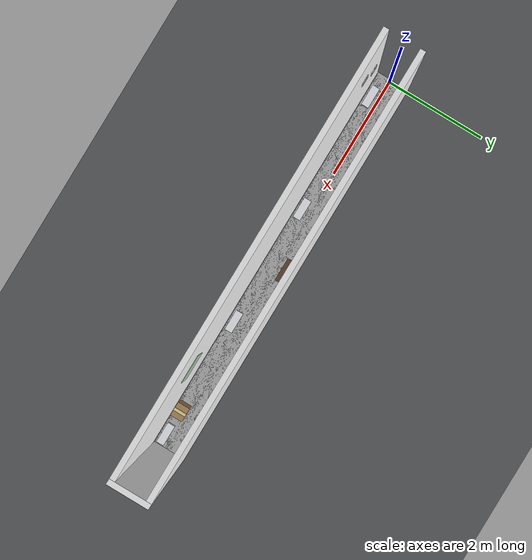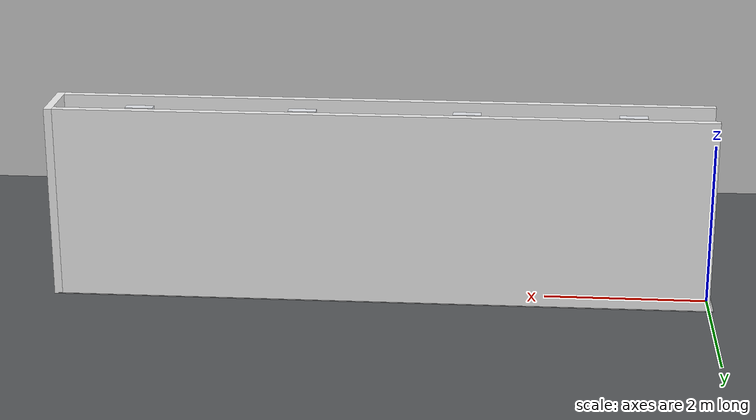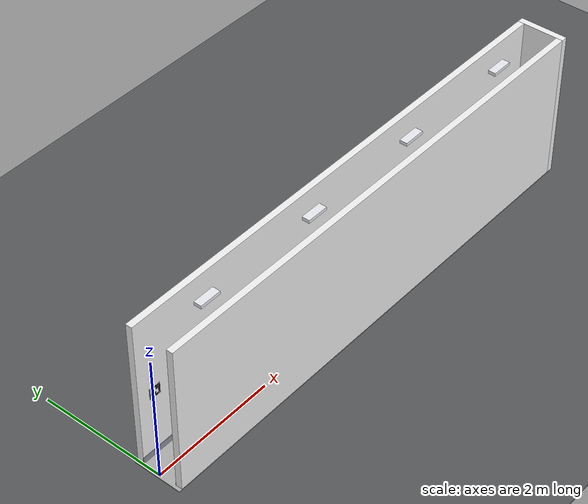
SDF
<sdf version='1.7'>
  <world name='slam_narrow_corridor'>
    <light name='sun' type='directional'>
      <cast_shadows>1</cast_shadows>
      <pose>0 0 10 0 0 0</pose>
      <diffuse>0.75 0.75 0.75 1</diffuse>
      <specular>0.2 0.2 0.2 1</specular>
      <attenuation>
        <range>1000</range>
        <constant>0.9</constant>
        <linear>0.01</linear>
        <quadratic>0.001</quadratic>
      </attenuation>
      <direction>-0.4 0.1 -0.9</direction>
    </light>
    <light name="narrow_light_1" type="point">
  <pose>1.0000 0.0000 2.2800 0.0000 0.0000 0.0000</pose>
  <diffuse>1.000 0.980 0.920 1.000</diffuse>
  <specular>0.200 0.200 0.200 1.000</specular>
  <attenuation>
    <range>8</range>
    <constant>0.4</constant>
    <linear>0.2571</linear>
    <quadratic>0.0429</quadratic>
  </attenuation>
  <cast_shadows>1</cast_shadows>
</light>
    <light name="narrow_light_2" type="point">
  <pose>3.0000 0.0000 2.2800 0.0000 0.0000 0.0000</pose>
  <diffuse>1.000 0.980 0.920 1.000</diffuse>
  <specular>0.200 0.200 0.200 1.000</specular>
  <attenuation>
    <range>8</range>
    <constant>0.4</constant>
    <linear>0.2571</linear>
    <quadratic>0.0429</quadratic>
  </attenuation>
  <cast_shadows>1</cast_shadows>
</light>
    <light name="narrow_light_3" type="point">
  <pose>5.0000 0.0000 2.2800 0.0000 0.0000 0.0000</pose>
  <diffuse>1.000 0.980 0.920 1.000</diffuse>
  <specular>0.200 0.200 0.200 1.000</specular>
  <attenuation>
    <range>8</range>
    <constant>0.4</constant>
    <linear>0.2571</linear>
    <quadratic>0.0429</quadratic>
  </attenuation>
  <cast_shadows>1</cast_shadows>
</light>
    <light name="narrow_light_4" type="point">
  <pose>7.0000 0.0000 2.2800 0.0000 0.0000 0.0000</pose>
  <diffuse>1.000 0.980 0.920 1.000</diffuse>
  <specular>0.200 0.200 0.200 1.000</specular>
  <attenuation>
    <range>8</range>
    <constant>0.4</constant>
    <linear>0.2571</linear>
    <quadratic>0.0429</quadratic>
  </attenuation>
  <cast_shadows>1</cast_shadows>
</light>
    <gravity>0 0 -9.8</gravity>
    <physics type='ode'>
      <max_step_size>0.001</max_step_size>
      <real_time_factor>1</real_time_factor>
      <real_time_update_rate>1000</real_time_update_rate>
    </physics>
    <scene>
      <ambient>0.450 0.450 0.450 1</ambient>
      <background>0.790 0.800 0.820 1</background>
      <shadows>1</shadows>
    </scene>
    <model name="ground_plane">
  <static>1</static>
  <link name="link">
    <collision name="plane_collision">
  <pose>0.0000 0.0000 0.0000 0.0000 0.0000 0.0000</pose>
  <geometry><box><size>40.0000 40.0000 0.0200</size></box></geometry>
</collision>
<visual name="plane_visual">
  <pose>0.0000 0.0000 0.0000 0.0000 0.0000 0.0000</pose>
  <cast_shadows>1</cast_shadows>
  <geometry><box><size>40.0000 40.0000 0.0200</size></box></geometry>
  <material>
  <ambient>0.340 0.350 0.360 1.000</ambient>
  <diffuse>0.340 0.350 0.360 1.000</diffuse>
  <specular>0.080 0.080 0.080 1.000</specular>
</material>
</visual>
  </link>
</model>
    <model name="narrow_shell">
  <static>1</static>
  <link name="shell">
    <collision name="left_wall_collision">
  <pose>4.0000 -0.3250 1.2000 0.0000 0.0000 0.0000</pose>
  <geometry><box><size>8.0000 0.1000 2.4000</size></box></geometry>
</collision>
<visual name="left_wall_visual">
  <pose>4.0000 -0.3250 1.2000 0.0000 0.0000 0.0000</pose>
  <cast_shadows>1</cast_shadows>
  <geometry><box><size>8.0000 0.1000 2.4000</size></box></geometry>
  <material>
  <ambient>0.950 0.950 0.950 1.000</ambient>
  <diffuse>0.950 0.950 0.950 1.000</diffuse>
  <specular>0.080 0.080 0.080 1.000</specular>
</material>
</visual>
    <collision name="right_wall_collision">
  <pose>4.0000 0.3250 1.2000 0.0000 0.0000 0.0000</pose>
  <geometry><box><size>8.0000 0.1000 2.4000</size></box></geometry>
</collision>
<visual name="right_wall_visual">
  <pose>4.0000 0.3250 1.2000 0.0000 0.0000 0.0000</pose>
  <cast_shadows>1</cast_shadows>
  <geometry><box><size>8.0000 0.1000 2.4000</size></box></geometry>
  <material>
  <ambient>0.950 0.950 0.950 1.000</ambient>
  <diffuse>0.950 0.950 0.950 1.000</diffuse>
  <specular>0.080 0.080 0.080 1.000</specular>
</material>
</visual>
    <collision name="end_wall_collision">
  <pose>8.0500 0.0000 1.2000 0.0000 0.0000 0.0000</pose>
  <geometry><box><size>0.1000 0.7500 2.4000</size></box></geometry>
</collision>
<visual name="end_wall_visual">
  <pose>8.0500 0.0000 1.2000 0.0000 0.0000 0.0000</pose>
  <cast_shadows>1</cast_shadows>
  <geometry><box><size>0.1000 0.7500 2.4000</size></box></geometry>
  <material>
  <ambient>0.950 0.950 0.950 1.000</ambient>
  <diffuse>0.950 0.950 0.950 1.000</diffuse>
  <specular>0.080 0.080 0.080 1.000</specular>
</material>
</visual>
    <visual name="left_baseboard_visual">
  <pose>4.0000 -0.2760 0.0600 0.0000 0.0000 0.0000</pose>
  <cast_shadows>1</cast_shadows>
  <geometry><box><size>8.0000 0.0120 0.1200</size></box></geometry>
  <material>
  <ambient>0.560 0.570 0.600 1.000</ambient>
  <diffuse>0.560 0.570 0.600 1.000</diffuse>
  <specular>0.080 0.080 0.080 1.000</specular>
</material>
</visual>
    <visual name="right_baseboard_visual">
  <pose>4.0000 0.2760 0.0600 0.0000 0.0000 0.0000</pose>
  <cast_shadows>1</cast_shadows>
  <geometry><box><size>8.0000 0.0120 0.1200</size></box></geometry>
  <material>
  <ambient>0.560 0.570 0.600 1.000</ambient>
  <diffuse>0.560 0.570 0.600 1.000</diffuse>
  <specular>0.080 0.080 0.080 1.000</specular>
</material>
</visual>
    <visual name="left_notice_visual">
  <pose>6.1500 -0.2680 1.3800 0.0000 0.0000 0.0000</pose>
  <cast_shadows>1</cast_shadows>
  <geometry><box><size>0.5200 0.0100 0.4200</size></box></geometry>
  <material>
  <ambient>0.630 0.760 0.630 1.000</ambient>
  <diffuse>0.630 0.760 0.630 1.000</diffuse>
  <specular>0.080 0.080 0.080 1.000</specular>
</material>
</visual>
    <visual name="right_notice_visual">
  <pose>2.2000 0.2680 1.2800 0.0000 0.0000 0.0000</pose>
  <cast_shadows>1</cast_shadows>
  <geometry><box><size>0.4800 0.0100 0.3400</size></box></geometry>
  <material>
  <ambient>0.530 0.690 0.840 1.000</ambient>
  <diffuse>0.530 0.690 0.840 1.000</diffuse>
  <specular>0.080 0.080 0.080 1.000</specular>
</material>
</visual>
    <visual name="fixture_1_visual">
  <pose>1.0000 0.0000 2.3200 0.0000 0.0000 0.0000</pose>
  <cast_shadows>1</cast_shadows>
  <geometry><box><size>0.3400 0.1200 0.0500</size></box></geometry>
  <material>
  <ambient>0.920 0.930 0.950 1.000</ambient>
  <diffuse>0.920 0.930 0.950 1.000</diffuse>
  <specular>0.080 0.080 0.080 1.000</specular>
</material>
</visual>
    <visual name="fixture_2_visual">
  <pose>3.0000 0.0000 2.3200 0.0000 0.0000 0.0000</pose>
  <cast_shadows>1</cast_shadows>
  <geometry><box><size>0.3400 0.1200 0.0500</size></box></geometry>
  <material>
  <ambient>0.920 0.930 0.950 1.000</ambient>
  <diffuse>0.920 0.930 0.950 1.000</diffuse>
  <specular>0.080 0.080 0.080 1.000</specular>
</material>
</visual>
    <visual name="fixture_3_visual">
  <pose>5.0000 0.0000 2.3200 0.0000 0.0000 0.0000</pose>
  <cast_shadows>1</cast_shadows>
  <geometry><box><size>0.3400 0.1200 0.0500</size></box></geometry>
  <material>
  <ambient>0.920 0.930 0.950 1.000</ambient>
  <diffuse>0.920 0.930 0.950 1.000</diffuse>
  <specular>0.080 0.080 0.080 1.000</specular>
</material>
</visual>
    <visual name="fixture_4_visual">
  <pose>7.0000 0.0000 2.3200 0.0000 0.0000 0.0000</pose>
  <cast_shadows>1</cast_shadows>
  <geometry><box><size>0.3400 0.1200 0.0500</size></box></geometry>
  <material>
  <ambient>0.920 0.930 0.950 1.000</ambient>
  <diffuse>0.920 0.930 0.950 1.000</diffuse>
  <specular>0.080 0.080 0.080 1.000</specular>
</material>
</visual>
  </link>
</model>
    <model name="narrow_floor">
  <static>1</static>
  <link name="floor">
    <collision name="floor_base_collision">
  <pose>4.0000 0.0000 0.0100 0.0000 0.0000 0.0000</pose>
  <geometry><box><size>8.1000 0.7600 0.0200</size></box></geometry>
</collision>
<visual name="floor_base_visual">
  <pose>4.0000 0.0000 0.0100 0.0000 0.0000 0.0000</pose>
  <cast_shadows>1</cast_shadows>
  <geometry><box><size>8.1000 0.7600 0.0200</size></box></geometry>
  <material>
  <ambient>0.680 0.680 0.680 1.000</ambient>
  <diffuse>0.680 0.680 0.680 1.000</diffuse>
  <specular>0.080 0.080 0.080 1.000</specular>
</material>
</visual>
    <visual name="tile_0_0_visual">
  <pose>0.2500 -0.1375 0.0170 0.0000 0.0000 0.0000</pose>
  <cast_shadows>1</cast_shadows>
  <geometry><box><size>0.5000 0.2750 0.0060</size></box></geometry>
  <material>
  <ambient>0.840 0.840 0.840 1.000</ambient>
  <diffuse>0.840 0.840 0.840 1.000</diffuse>
  <specular>0.080 0.080 0.080 1.000</specular>
</material>
</visual>
    <visual name="tile_0_1_visual">
  <pose>0.2500 0.1375 0.0170 0.0000 0.0000 0.0000</pose>
  <cast_shadows>1</cast_shadows>
  <geometry><box><size>0.5000 0.2750 0.0060</size></box></geometry>
  <material>
  <ambient>0.730 0.740 0.760 1.000</ambient>
  <diffuse>0.730 0.740 0.760 1.000</diffuse>
  <specular>0.080 0.080 0.080 1.000</specular>
</material>
</visual>
    <visual name="tile_1_0_visual">
  <pose>0.7500 -0.1375 0.0170 0.0000 0.0000 0.0000</pose>
  <cast_shadows>1</cast_shadows>
  <geometry><box><size>0.5000 0.2750 0.0060</size></box></geometry>
  <material>
  <ambient>0.730 0.740 0.760 1.000</ambient>
  <diffuse>0.730 0.740 0.760 1.000</diffuse>
  <specular>0.080 0.080 0.080 1.000</specular>
</material>
</visual>
    <visual name="tile_1_1_visual">
  <pose>0.7500 0.1375 0.0170 0.0000 0.0000 0.0000</pose>
  <cast_shadows>1</cast_shadows>
  <geometry><box><size>0.5000 0.2750 0.0060</size></box></geometry>
  <material>
  <ambient>0.840 0.840 0.840 1.000</ambient>
  <diffuse>0.840 0.840 0.840 1.000</diffuse>
  <specular>0.080 0.080 0.080 1.000</specular>
</material>
</visual>
    <visual name="tile_2_0_visual">
  <pose>1.2500 -0.1375 0.0170 0.0000 0.0000 0.0000</pose>
  <cast_shadows>1</cast_shadows>
  <geometry><box><size>0.5000 0.2750 0.0060</size></box></geometry>
  <material>
  <ambient>0.840 0.840 0.840 1.000</ambient>
  <diffuse>0.840 0.840 0.840 1.000</diffuse>
  <specular>0.080 0.080 0.080 1.000</specular>
</material>
</visual>
    <visual name="tile_2_1_visual">
  <pose>1.2500 0.1375 0.0170 0.0000 0.0000 0.0000</pose>
  <cast_shadows>1</cast_shadows>
  <geometry><box><size>0.5000 0.2750 0.0060</size></box></geometry>
  <material>
  <ambient>0.730 0.740 0.760 1.000</ambient>
  <diffuse>0.730 0.740 0.760 1.000</diffuse>
  <specular>0.080 0.080 0.080 1.000</specular>
</material>
</visual>
    <visual name="tile_3_0_visual">
  <pose>1.7500 -0.1375 0.0170 0.0000 0.0000 0.0000</pose>
  <cast_shadows>1</cast_shadows>
  <geometry><box><size>0.5000 0.2750 0.0060</size></box></geometry>
  <material>
  <ambient>0.730 0.740 0.760 1.000</ambient>
  <diffuse>0.730 0.740 0.760 1.000</diffuse>
  <specular>0.080 0.080 0.080 1.000</specular>
</material>
</visual>
    <visual name="tile_3_1_visual">
  <pose>1.7500 0.1375 0.0170 0.0000 0.0000 0.0000</pose>
  <cast_shadows>1</cast_shadows>
  <geometry><box><size>0.5000 0.2750 0.0060</size></box></geometry>
  <material>
  <ambient>0.840 0.840 0.840 1.000</ambient>
  <diffuse>0.840 0.840 0.840 1.000</diffuse>
  <specular>0.080 0.080 0.080 1.000</specular>
</material>
</visual>
    <visual name="tile_4_0_visual">
  <pose>2.2500 -0.1375 0.0170 0.0000 0.0000 0.0000</pose>
  <cast_shadows>1</cast_shadows>
  <geometry><box><size>0.5000 0.2750 0.0060</size></box></geometry>
  <material>
  <ambient>0.840 0.840 0.840 1.000</ambient>
  <diffuse>0.840 0.840 0.840 1.000</diffuse>
  <specular>0.080 0.080 0.080 1.000</specular>
</material>
</visual>
    <visual name="tile_4_1_visual">
  <pose>2.2500 0.1375 0.0170 0.0000 0.0000 0.0000</pose>
  <cast_shadows>1</cast_shadows>
  <geometry><box><size>0.5000 0.2750 0.0060</size></box></geometry>
  <material>
  <ambient>0.730 0.740 0.760 1.000</ambient>
  <diffuse>0.730 0.740 0.760 1.000</diffuse>
  <specular>0.080 0.080 0.080 1.000</specular>
</material>
</visual>
    <visual name="tile_5_0_visual">
  <pose>2.7500 -0.1375 0.0170 0.0000 0.0000 0.0000</pose>
  <cast_shadows>1</cast_shadows>
  <geometry><box><size>0.5000 0.2750 0.0060</size></box></geometry>
  <material>
  <ambient>0.730 0.740 0.760 1.000</ambient>
  <diffuse>0.730 0.740 0.760 1.000</diffuse>
  <specular>0.080 0.080 0.080 1.000</specular>
</material>
</visual>
    <visual name="tile_5_1_visual">
  <pose>2.7500 0.1375 0.0170 0.0000 0.0000 0.0000</pose>
  <cast_shadows>1</cast_shadows>
  <geometry><box><size>0.5000 0.2750 0.0060</size></box></geometry>
  <material>
  <ambient>0.840 0.840 0.840 1.000</ambient>
  <diffuse>0.840 0.840 0.840 1.000</diffuse>
  <specular>0.080 0.080 0.080 1.000</specular>
</material>
</visual>
    <visual name="tile_6_0_visual">
  <pose>3.2500 -0.1375 0.0170 0.0000 0.0000 0.0000</pose>
  <cast_shadows>1</cast_shadows>
  <geometry><box><size>0.5000 0.2750 0.0060</size></box></geometry>
  <material>
  <ambient>0.840 0.840 0.840 1.000</ambient>
  <diffuse>0.840 0.840 0.840 1.000</diffuse>
  <specular>0.080 0.080 0.080 1.000</specular>
</material>
</visual>
    <visual name="tile_6_1_visual">
  <pose>3.2500 0.1375 0.0170 0.0000 0.0000 0.0000</pose>
  <cast_shadows>1</cast_shadows>
  <geometry><box><size>0.5000 0.2750 0.0060</size></box></geometry>
  <material>
  <ambient>0.730 0.740 0.760 1.000</ambient>
  <diffuse>0.730 0.740 0.760 1.000</diffuse>
  <specular>0.080 0.080 0.080 1.000</specular>
</material>
</visual>
    <visual name="tile_7_0_visual">
  <pose>3.7500 -0.1375 0.0170 0.0000 0.0000 0.0000</pose>
  <cast_shadows>1</cast_shadows>
  <geometry><box><size>0.5000 0.2750 0.0060</size></box></geometry>
  <material>
  <ambient>0.730 0.740 0.760 1.000</ambient>
  <diffuse>0.730 0.740 0.760 1.000</diffuse>
  <specular>0.080 0.080 0.080 1.000</specular>
</material>
</visual>
    <visual name="tile_7_1_visual">
  <pose>3.7500 0.1375 0.0170 0.0000 0.0000 0.0000</pose>
  <cast_shadows>1</cast_shadows>
  <geometry><box><size>0.5000 0.2750 0.0060</size></box></geometry>
  <material>
  <ambient>0.840 0.840 0.840 1.000</ambient>
  <diffuse>0.840 0.840 0.840 1.000</diffuse>
  <specular>0.080 0.080 0.080 1.000</specular>
</material>
</visual>
    <visual name="tile_8_0_visual">
  <pose>4.2500 -0.1375 0.0170 0.0000 0.0000 0.0000</pose>
  <cast_shadows>1</cast_shadows>
  <geometry><box><size>0.5000 0.2750 0.0060</size></box></geometry>
  <material>
  <ambient>0.840 0.840 0.840 1.000</ambient>
  <diffuse>0.840 0.840 0.840 1.000</diffuse>
  <specular>0.080 0.080 0.080 1.000</specular>
</material>
</visual>
    <visual name="tile_8_1_visual">
  <pose>4.2500 0.1375 0.0170 0.0000 0.0000 0.0000</pose>
  <cast_shadows>1</cast_shadows>
  <geometry><box><size>0.5000 0.2750 0.0060</size></box></geometry>
  <material>
  <ambient>0.730 0.740 0.760 1.000</ambient>
  <diffuse>0.730 0.740 0.760 1.000</diffuse>
  <specular>0.080 0.080 0.080 1.000</specular>
</material>
</visual>
    <visual name="tile_9_0_visual">
  <pose>4.7500 -0.1375 0.0170 0.0000 0.0000 0.0000</pose>
  <cast_shadows>1</cast_shadows>
  <geometry><box><size>0.5000 0.2750 0.0060</size></box></geometry>
  <material>
  <ambient>0.730 0.740 0.760 1.000</ambient>
  <diffuse>0.730 0.740 0.760 1.000</diffuse>
  <specular>0.080 0.080 0.080 1.000</specular>
</material>
</visual>
    <visual name="tile_9_1_visual">
  <pose>4.7500 0.1375 0.0170 0.0000 0.0000 0.0000</pose>
  <cast_shadows>1</cast_shadows>
  <geometry><box><size>0.5000 0.2750 0.0060</size></box></geometry>
  <material>
  <ambient>0.840 0.840 0.840 1.000</ambient>
  <diffuse>0.840 0.840 0.840 1.000</diffuse>
  <specular>0.080 0.080 0.080 1.000</specular>
</material>
</visual>
    <visual name="tile_10_0_visual">
  <pose>5.2500 -0.1375 0.0170 0.0000 0.0000 0.0000</pose>
  <cast_shadows>1</cast_shadows>
  <geometry><box><size>0.5000 0.2750 0.0060</size></box></geometry>
  <material>
  <ambient>0.840 0.840 0.840 1.000</ambient>
  <diffuse>0.840 0.840 0.840 1.000</diffuse>
  <specular>0.080 0.080 0.080 1.000</specular>
</material>
</visual>
    <visual name="tile_10_1_visual">
  <pose>5.2500 0.1375 0.0170 0.0000 0.0000 0.0000</pose>
  <cast_shadows>1</cast_shadows>
  <geometry><box><size>0.5000 0.2750 0.0060</size></box></geometry>
  <material>
  <ambient>0.730 0.740 0.760 1.000</ambient>
  <diffuse>0.730 0.740 0.760 1.000</diffuse>
  <specular>0.080 0.080 0.080 1.000</specular>
</material>
</visual>
    <visual name="tile_11_0_visual">
  <pose>5.7500 -0.1375 0.0170 0.0000 0.0000 0.0000</pose>
  <cast_shadows>1</cast_shadows>
  <geometry><box><size>0.5000 0.2750 0.0060</size></box></geometry>
  <material>
  <ambient>0.730 0.740 0.760 1.000</ambient>
  <diffuse>0.730 0.740 0.760 1.000</diffuse>
  <specular>0.080 0.080 0.080 1.000</specular>
</material>
</visual>
    <visual name="tile_11_1_visual">
  <pose>5.7500 0.1375 0.0170 0.0000 0.0000 0.0000</pose>
  <cast_shadows>1</cast_shadows>
  <geometry><box><size>0.5000 0.2750 0.0060</size></box></geometry>
  <material>
  <ambient>0.840 0.840 0.840 1.000</ambient>
  <diffuse>0.840 0.840 0.840 1.000</diffuse>
  <specular>0.080 0.080 0.080 1.000</specular>
</material>
</visual>
    <visual name="tile_12_0_visual">
  <pose>6.2500 -0.1375 0.0170 0.0000 0.0000 0.0000</pose>
  <cast_shadows>1</cast_shadows>
  <geometry><box><size>0.5000 0.2750 0.0060</size></box></geometry>
  <material>
  <ambient>0.840 0.840 0.840 1.000</ambient>
  <diffuse>0.840 0.840 0.840 1.000</diffuse>
  <specular>0.080 0.080 0.080 1.000</specular>
</material>
</visual>
    <visual name="tile_12_1_visual">
  <pose>6.2500 0.1375 0.0170 0.0000 0.0000 0.0000</pose>
  <cast_shadows>1</cast_shadows>
  <geometry><box><size>0.5000 0.2750 0.0060</size></box></geometry>
  <material>
  <ambient>0.730 0.740 0.760 1.000</ambient>
  <diffuse>0.730 0.740 0.760 1.000</diffuse>
  <specular>0.080 0.080 0.080 1.000</specular>
</material>
</visual>
    <visual name="tile_13_0_visual">
  <pose>6.7500 -0.1375 0.0170 0.0000 0.0000 0.0000</pose>
  <cast_shadows>1</cast_shadows>
  <geometry><box><size>0.5000 0.2750 0.0060</size></box></geometry>
  <material>
  <ambient>0.730 0.740 0.760 1.000</ambient>
  <diffuse>0.730 0.740 0.760 1.000</diffuse>
  <specular>0.080 0.080 0.080 1.000</specular>
</material>
</visual>
    <visual name="tile_13_1_visual">
  <pose>6.7500 0.1375 0.0170 0.0000 0.0000 0.0000</pose>
  <cast_shadows>1</cast_shadows>
  <geometry><box><size>0.5000 0.2750 0.0060</size></box></geometry>
  <material>
  <ambient>0.840 0.840 0.840 1.000</ambient>
  <diffuse>0.840 0.840 0.840 1.000</diffuse>
  <specular>0.080 0.080 0.080 1.000</specular>
</material>
</visual>
    <visual name="tile_14_0_visual">
  <pose>7.2500 -0.1375 0.0170 0.0000 0.0000 0.0000</pose>
  <cast_shadows>1</cast_shadows>
  <geometry><box><size>0.5000 0.2750 0.0060</size></box></geometry>
  <material>
  <ambient>0.840 0.840 0.840 1.000</ambient>
  <diffuse>0.840 0.840 0.840 1.000</diffuse>
  <specular>0.080 0.080 0.080 1.000</specular>
</material>
</visual>
    <visual name="tile_14_1_visual">
  <pose>7.2500 0.1375 0.0170 0.0000 0.0000 0.0000</pose>
  <cast_shadows>1</cast_shadows>
  <geometry><box><size>0.5000 0.2750 0.0060</size></box></geometry>
  <material>
  <ambient>0.730 0.740 0.760 1.000</ambient>
  <diffuse>0.730 0.740 0.760 1.000</diffuse>
  <specular>0.080 0.080 0.080 1.000</specular>
</material>
</visual>
    <visual name="tile_15_0_visual">
  <pose>7.7500 -0.1375 0.0170 0.0000 0.0000 0.0000</pose>
  <cast_shadows>1</cast_shadows>
  <geometry><box><size>0.5000 0.2750 0.0060</size></box></geometry>
  <material>
  <ambient>0.730 0.740 0.760 1.000</ambient>
  <diffuse>0.730 0.740 0.760 1.000</diffuse>
  <specular>0.080 0.080 0.080 1.000</specular>
</material>
</visual>
    <visual name="tile_15_1_visual">
  <pose>7.7500 0.1375 0.0170 0.0000 0.0000 0.0000</pose>
  <cast_shadows>1</cast_shadows>
  <geometry><box><size>0.5000 0.2750 0.0060</size></box></geometry>
  <material>
  <ambient>0.840 0.840 0.840 1.000</ambient>
  <diffuse>0.840 0.840 0.840 1.000</diffuse>
  <specular>0.080 0.080 0.080 1.000</specular>
</material>
</visual>
  </link>
</model>
    <model name="narrow_features">
  <static>1</static>
  <link name="features">
    <collision name="cabinet_body_collision">
  <pose>4.0000 0.2050 0.3900 0.0000 0.0000 0.0000</pose>
  <geometry><box><size>0.4200 0.1400 0.7800</size></box></geometry>
</collision>
<visual name="cabinet_body_visual">
  <pose>4.0000 0.2050 0.3900 0.0000 0.0000 0.0000</pose>
  <cast_shadows>1</cast_shadows>
  <geometry><box><size>0.4200 0.1400 0.7800</size></box></geometry>
  <material>
  <ambient>0.590 0.470 0.330 1.000</ambient>
  <diffuse>0.590 0.470 0.330 1.000</diffuse>
  <specular>0.080 0.080 0.080 1.000</specular>
</material>
</visual>
    <visual name="cabinet_top_visual">
  <pose>4.0000 0.2050 0.8000 0.0000 0.0000 0.0000</pose>
  <cast_shadows>1</cast_shadows>
  <geometry><box><size>0.4400 0.1600 0.0300</size></box></geometry>
  <material>
  <ambient>0.350 0.270 0.200 1.000</ambient>
  <diffuse>0.350 0.270 0.200 1.000</diffuse>
  <specular>0.080 0.080 0.080 1.000</specular>
</material>
</visual>
    <visual name="cabinet_handle_1_visual">
  <pose>4.1000 0.1280 0.5400 0.0000 0.0000 0.0000</pose>
  <cast_shadows>1</cast_shadows>
  <geometry><box><size>0.0300 0.0100 0.1200</size></box></geometry>
  <material>
  <ambient>0.880 0.880 0.880 1.000</ambient>
  <diffuse>0.880 0.880 0.880 1.000</diffuse>
  <specular>0.080 0.080 0.080 1.000</specular>
</material>
</visual>
    <visual name="cabinet_handle_2_visual">
  <pose>3.9000 0.1280 0.5400 0.0000 0.0000 0.0000</pose>
  <cast_shadows>1</cast_shadows>
  <geometry><box><size>0.0300 0.0100 0.1200</size></box></geometry>
  <material>
  <ambient>0.880 0.880 0.880 1.000</ambient>
  <diffuse>0.880 0.880 0.880 1.000</diffuse>
  <specular>0.080 0.080 0.080 1.000</specular>
</material>
</visual>
    <collision name="paper_box_body_collision">
  <pose>7.2200 -0.1350 0.1200 0.0000 0.0000 0.0000</pose>
  <geometry><box><size>0.2800 0.2400 0.2400</size></box></geometry>
</collision>
<visual name="paper_box_body_visual">
  <pose>7.2200 -0.1350 0.1200 0.0000 0.0000 0.0000</pose>
  <cast_shadows>1</cast_shadows>
  <geometry><box><size>0.2800 0.2400 0.2400</size></box></geometry>
  <material>
  <ambient>0.670 0.530 0.350 1.000</ambient>
  <diffuse>0.670 0.530 0.350 1.000</diffuse>
  <specular>0.080 0.080 0.080 1.000</specular>
</material>
</visual>
    <visual name="paper_box_tape_visual">
  <pose>7.2200 -0.1350 0.2500 0.0000 0.0000 0.0000</pose>
  <cast_shadows>1</cast_shadows>
  <geometry><box><size>0.0600 0.2450 0.0100</size></box></geometry>
  <material>
  <ambient>0.880 0.830 0.570 1.000</ambient>
  <diffuse>0.880 0.830 0.570 1.000</diffuse>
  <specular>0.080 0.080 0.080 1.000</specular>
</material>
</visual>
    <visual name="entrance_tag_1_plaque_visual">
  <pose>0.2800 -0.2690 1.1200 0.0000 0.0000 0.0000</pose>
  <cast_shadows>1</cast_shadows>
  <geometry><box><size>0.1800 0.0120 0.1800</size></box></geometry>
  <material>
  <ambient>0.960 0.960 0.960 1.000</ambient>
  <diffuse>0.960 0.960 0.960 1.000</diffuse>
  <specular>0.080 0.080 0.080 1.000</specular>
</material>
</visual>
    <visual name="entrance_tag_1_top_visual">
  <pose>0.2800 -0.2690 1.1938 0.0000 0.0000 0.0000</pose>
  <cast_shadows>1</cast_shadows>
  <geometry><box><size>0.1800 0.0132 0.0324</size></box></geometry>
  <material>
  <ambient>0.050 0.050 0.050 1.000</ambient>
  <diffuse>0.050 0.050 0.050 1.000</diffuse>
  <specular>0.080 0.080 0.080 1.000</specular>
</material>
</visual>
    <visual name="entrance_tag_1_bottom_visual">
  <pose>0.2800 -0.2690 1.0462 0.0000 0.0000 0.0000</pose>
  <cast_shadows>1</cast_shadows>
  <geometry><box><size>0.1800 0.0132 0.0324</size></box></geometry>
  <material>
  <ambient>0.050 0.050 0.050 1.000</ambient>
  <diffuse>0.050 0.050 0.050 1.000</diffuse>
  <specular>0.080 0.080 0.080 1.000</specular>
</material>
</visual>
    <visual name="entrance_tag_1_left_visual">
  <pose>0.2062 -0.2690 1.1200 0.0000 0.0000 0.0000</pose>
  <cast_shadows>1</cast_shadows>
  <geometry><box><size>0.0324 0.0132 0.1800</size></box></geometry>
  <material>
  <ambient>0.050 0.050 0.050 1.000</ambient>
  <diffuse>0.050 0.050 0.050 1.000</diffuse>
  <specular>0.080 0.080 0.080 1.000</specular>
</material>
</visual>
    <visual name="entrance_tag_1_right_visual">
  <pose>0.3538 -0.2690 1.1200 0.0000 0.0000 0.0000</pose>
  <cast_shadows>1</cast_shadows>
  <geometry><box><size>0.0324 0.0132 0.1800</size></box></geometry>
  <material>
  <ambient>0.050 0.050 0.050 1.000</ambient>
  <diffuse>0.050 0.050 0.050 1.000</diffuse>
  <specular>0.080 0.080 0.080 1.000</specular>
</material>
</visual>
    <visual name="entrance_tag_1_cell_1_visual">
  <pose>0.2480 -0.2690 1.1520 0.0000 0.0000 0.0000</pose>
  <cast_shadows>1</cast_shadows>
  <geometry><box><size>0.0396 0.0132 0.0396</size></box></geometry>
  <material>
  <ambient>0.050 0.050 0.050 1.000</ambient>
  <diffuse>0.050 0.050 0.050 1.000</diffuse>
  <specular>0.080 0.080 0.080 1.000</specular>
</material>
</visual>
    <visual name="entrance_tag_1_cell_2_visual">
  <pose>0.3160 -0.2690 1.0880 0.0000 0.0000 0.0000</pose>
  <cast_shadows>1</cast_shadows>
  <geometry><box><size>0.0396 0.0132 0.0396</size></box></geometry>
  <material>
  <ambient>0.050 0.050 0.050 1.000</ambient>
  <diffuse>0.050 0.050 0.050 1.000</diffuse>
  <specular>0.080 0.080 0.080 1.000</specular>
</material>
</visual>
    <visual name="entrance_tag_2_plaque_visual">
  <pose>0.6200 -0.2690 1.5200 0.0000 0.0000 0.0000</pose>
  <cast_shadows>1</cast_shadows>
  <geometry><box><size>0.1800 0.0120 0.1800</size></box></geometry>
  <material>
  <ambient>0.960 0.960 0.960 1.000</ambient>
  <diffuse>0.960 0.960 0.960 1.000</diffuse>
  <specular>0.080 0.080 0.080 1.000</specular>
</material>
</visual>
    <visual name="entrance_tag_2_top_visual">
  <pose>0.6200 -0.2690 1.5938 0.0000 0.0000 0.0000</pose>
  <cast_shadows>1</cast_shadows>
  <geometry><box><size>0.1800 0.0132 0.0324</size></box></geometry>
  <material>
  <ambient>0.050 0.050 0.050 1.000</ambient>
  <diffuse>0.050 0.050 0.050 1.000</diffuse>
  <specular>0.080 0.080 0.080 1.000</specular>
</material>
</visual>
    <visual name="entrance_tag_2_bottom_visual">
  <pose>0.6200 -0.2690 1.4462 0.0000 0.0000 0.0000</pose>
  <cast_shadows>1</cast_shadows>
  <geometry><box><size>0.1800 0.0132 0.0324</size></box></geometry>
  <material>
  <ambient>0.050 0.050 0.050 1.000</ambient>
  <diffuse>0.050 0.050 0.050 1.000</diffuse>
  <specular>0.080 0.080 0.080 1.000</specular>
</material>
</visual>
    <visual name="entrance_tag_2_left_visual">
  <pose>0.5462 -0.2690 1.5200 0.0000 0.0000 0.0000</pose>
  <cast_shadows>1</cast_shadows>
  <geometry><box><size>0.0324 0.0132 0.1800</size></box></geometry>
  <material>
  <ambient>0.050 0.050 0.050 1.000</ambient>
  <diffuse>0.050 0.050 0.050 1.000</diffuse>
  <specular>0.080 0.080 0.080 1.000</specular>
</material>
</visual>
    <visual name="entrance_tag_2_right_visual">
  <pose>0.6938 -0.2690 1.5200 0.0000 0.0000 0.0000</pose>
  <cast_shadows>1</cast_shadows>
  <geometry><box><size>0.0324 0.0132 0.1800</size></box></geometry>
  <material>
  <ambient>0.050 0.050 0.050 1.000</ambient>
  <diffuse>0.050 0.050 0.050 1.000</diffuse>
  <specular>0.080 0.080 0.080 1.000</specular>
</material>
</visual>
    <visual name="entrance_tag_2_cell_1_visual">
  <pose>0.5840 -0.2690 1.4840 0.0000 0.0000 0.0000</pose>
  <cast_shadows>1</cast_shadows>
  <geometry><box><size>0.0396 0.0132 0.0396</size></box></geometry>
  <material>
  <ambient>0.050 0.050 0.050 1.000</ambient>
  <diffuse>0.050 0.050 0.050 1.000</diffuse>
  <specular>0.080 0.080 0.080 1.000</specular>
</material>
</visual>
    <visual name="entrance_tag_2_cell_2_visual">
  <pose>0.6560 -0.2690 1.5560 0.0000 0.0000 0.0000</pose>
  <cast_shadows>1</cast_shadows>
  <geometry><box><size>0.0396 0.0132 0.0396</size></box></geometry>
  <material>
  <ambient>0.050 0.050 0.050 1.000</ambient>
  <diffuse>0.050 0.050 0.050 1.000</diffuse>
  <specular>0.080 0.080 0.080 1.000</specular>
</material>
</visual>
    <visual name="entrance_tag_2_cell_3_visual">
  <pose>0.6200 -0.2690 1.5200 0.0000 0.0000 0.0000</pose>
  <cast_shadows>1</cast_shadows>
  <geometry><box><size>0.0396 0.0132 0.0396</size></box></geometry>
  <material>
  <ambient>0.050 0.050 0.050 1.000</ambient>
  <diffuse>0.050 0.050 0.050 1.000</diffuse>
  <specular>0.080 0.080 0.080 1.000</specular>
</material>
</visual>
    <visual name="entrance_tag_3_plaque_visual">
  <pose>0.2800 0.2690 1.1200 0.0000 0.0000 0.0000</pose>
  <cast_shadows>1</cast_shadows>
  <geometry><box><size>0.1800 0.0120 0.1800</size></box></geometry>
  <material>
  <ambient>0.960 0.960 0.960 1.000</ambient>
  <diffuse>0.960 0.960 0.960 1.000</diffuse>
  <specular>0.080 0.080 0.080 1.000</specular>
</material>
</visual>
    <visual name="entrance_tag_3_top_visual">
  <pose>0.2800 0.2690 1.1938 0.0000 0.0000 0.0000</pose>
  <cast_shadows>1</cast_shadows>
  <geometry><box><size>0.1800 0.0132 0.0324</size></box></geometry>
  <material>
  <ambient>0.050 0.050 0.050 1.000</ambient>
  <diffuse>0.050 0.050 0.050 1.000</diffuse>
  <specular>0.080 0.080 0.080 1.000</specular>
</material>
</visual>
    <visual name="entrance_tag_3_bottom_visual">
  <pose>0.2800 0.2690 1.0462 0.0000 0.0000 0.0000</pose>
  <cast_shadows>1</cast_shadows>
  <geometry><box><size>0.1800 0.0132 0.0324</size></box></geometry>
  <material>
  <ambient>0.050 0.050 0.050 1.000</ambient>
  <diffuse>0.050 0.050 0.050 1.000</diffuse>
  <specular>0.080 0.080 0.080 1.000</specular>
</material>
</visual>
    <visual name="entrance_tag_3_left_visual">
  <pose>0.2062 0.2690 1.1200 0.0000 0.0000 0.0000</pose>
  <cast_shadows>1</cast_shadows>
  <geometry><box><size>0.0324 0.0132 0.1800</size></box></geometry>
  <material>
  <ambient>0.050 0.050 0.050 1.000</ambient>
  <diffuse>0.050 0.050 0.050 1.000</diffuse>
  <specular>0.080 0.080 0.080 1.000</specular>
</material>
</visual>
    <visual name="entrance_tag_3_right_visual">
  <pose>0.3538 0.2690 1.1200 0.0000 0.0000 0.0000</pose>
  <cast_shadows>1</cast_shadows>
  <geometry><box><size>0.0324 0.0132 0.1800</size></box></geometry>
  <material>
  <ambient>0.050 0.050 0.050 1.000</ambient>
  <diffuse>0.050 0.050 0.050 1.000</diffuse>
  <specular>0.080 0.080 0.080 1.000</specular>
</material>
</visual>
    <visual name="entrance_tag_3_cell_1_visual">
  <pose>0.2440 0.2690 1.1560 0.0000 0.0000 0.0000</pose>
  <cast_shadows>1</cast_shadows>
  <geometry><box><size>0.0396 0.0132 0.0396</size></box></geometry>
  <material>
  <ambient>0.050 0.050 0.050 1.000</ambient>
  <diffuse>0.050 0.050 0.050 1.000</diffuse>
  <specular>0.080 0.080 0.080 1.000</specular>
</material>
</visual>
    <visual name="entrance_tag_3_cell_2_visual">
  <pose>0.2800 0.2690 1.0840 0.0000 0.0000 0.0000</pose>
  <cast_shadows>1</cast_shadows>
  <geometry><box><size>0.0396 0.0132 0.0396</size></box></geometry>
  <material>
  <ambient>0.050 0.050 0.050 1.000</ambient>
  <diffuse>0.050 0.050 0.050 1.000</diffuse>
  <specular>0.080 0.080 0.080 1.000</specular>
</material>
</visual>
    <visual name="entrance_tag_3_cell_3_visual">
  <pose>0.3160 0.2690 1.1560 0.0000 0.0000 0.0000</pose>
  <cast_shadows>1</cast_shadows>
  <geometry><box><size>0.0396 0.0132 0.0396</size></box></geometry>
  <material>
  <ambient>0.050 0.050 0.050 1.000</ambient>
  <diffuse>0.050 0.050 0.050 1.000</diffuse>
  <specular>0.080 0.080 0.080 1.000</specular>
</material>
</visual>
    <visual name="entrance_tag_4_plaque_visual">
  <pose>0.6200 0.2690 1.5200 0.0000 0.0000 0.0000</pose>
  <cast_shadows>1</cast_shadows>
  <geometry><box><size>0.1800 0.0120 0.1800</size></box></geometry>
  <material>
  <ambient>0.960 0.960 0.960 1.000</ambient>
  <diffuse>0.960 0.960 0.960 1.000</diffuse>
  <specular>0.080 0.080 0.080 1.000</specular>
</material>
</visual>
    <visual name="entrance_tag_4_top_visual">
  <pose>0.6200 0.2690 1.5938 0.0000 0.0000 0.0000</pose>
  <cast_shadows>1</cast_shadows>
  <geometry><box><size>0.1800 0.0132 0.0324</size></box></geometry>
  <material>
  <ambient>0.050 0.050 0.050 1.000</ambient>
  <diffuse>0.050 0.050 0.050 1.000</diffuse>
  <specular>0.080 0.080 0.080 1.000</specular>
</material>
</visual>
    <visual name="entrance_tag_4_bottom_visual">
  <pose>0.6200 0.2690 1.4462 0.0000 0.0000 0.0000</pose>
  <cast_shadows>1</cast_shadows>
  <geometry><box><size>0.1800 0.0132 0.0324</size></box></geometry>
  <material>
  <ambient>0.050 0.050 0.050 1.000</ambient>
  <diffuse>0.050 0.050 0.050 1.000</diffuse>
  <specular>0.080 0.080 0.080 1.000</specular>
</material>
</visual>
    <visual name="entrance_tag_4_left_visual">
  <pose>0.5462 0.2690 1.5200 0.0000 0.0000 0.0000</pose>
  <cast_shadows>1</cast_shadows>
  <geometry><box><size>0.0324 0.0132 0.1800</size></box></geometry>
  <material>
  <ambient>0.050 0.050 0.050 1.000</ambient>
  <diffuse>0.050 0.050 0.050 1.000</diffuse>
  <specular>0.080 0.080 0.080 1.000</specular>
</material>
</visual>
    <visual name="entrance_tag_4_right_visual">
  <pose>0.6938 0.2690 1.5200 0.0000 0.0000 0.0000</pose>
  <cast_shadows>1</cast_shadows>
  <geometry><box><size>0.0324 0.0132 0.1800</size></box></geometry>
  <material>
  <ambient>0.050 0.050 0.050 1.000</ambient>
  <diffuse>0.050 0.050 0.050 1.000</diffuse>
  <specular>0.080 0.080 0.080 1.000</specular>
</material>
</visual>
    <visual name="entrance_tag_4_cell_1_visual">
  <pose>0.5840 0.2690 1.5200 0.0000 0.0000 0.0000</pose>
  <cast_shadows>1</cast_shadows>
  <geometry><box><size>0.0396 0.0132 0.0396</size></box></geometry>
  <material>
  <ambient>0.050 0.050 0.050 1.000</ambient>
  <diffuse>0.050 0.050 0.050 1.000</diffuse>
  <specular>0.080 0.080 0.080 1.000</specular>
</material>
</visual>
    <visual name="entrance_tag_4_cell_2_visual">
  <pose>0.6560 0.2690 1.5200 0.0000 0.0000 0.0000</pose>
  <cast_shadows>1</cast_shadows>
  <geometry><box><size>0.0396 0.0132 0.0396</size></box></geometry>
  <material>
  <ambient>0.050 0.050 0.050 1.000</ambient>
  <diffuse>0.050 0.050 0.050 1.000</diffuse>
  <specular>0.080 0.080 0.080 1.000</specular>
</material>
</visual>
    <visual name="entrance_tag_4_cell_3_visual">
  <pose>0.6200 0.2690 1.5560 0.0000 0.0000 0.0000</pose>
  <cast_shadows>1</cast_shadows>
  <geometry><box><size>0.0396 0.0132 0.0396</size></box></geometry>
  <material>
  <ambient>0.050 0.050 0.050 1.000</ambient>
  <diffuse>0.050 0.050 0.050 1.000</diffuse>
  <specular>0.080 0.080 0.080 1.000</specular>
</material>
</visual>
  </link>
</model>
  </world>
</sdf>
